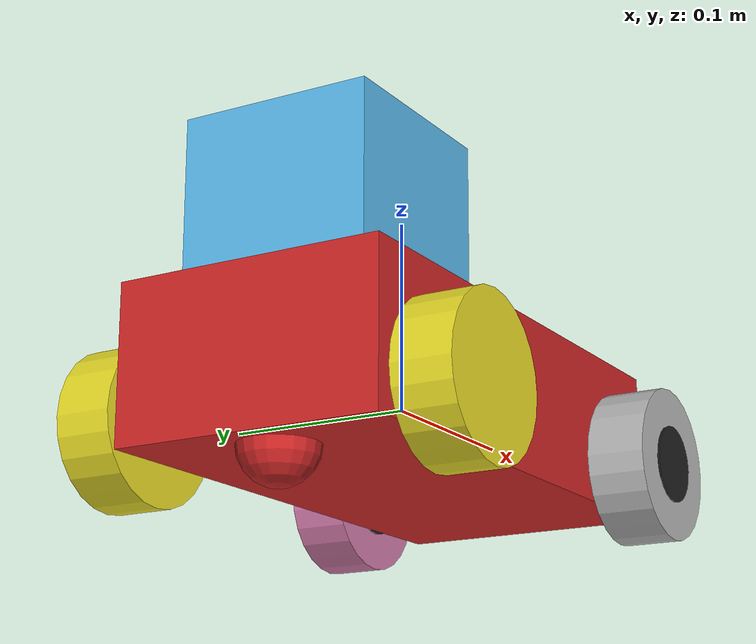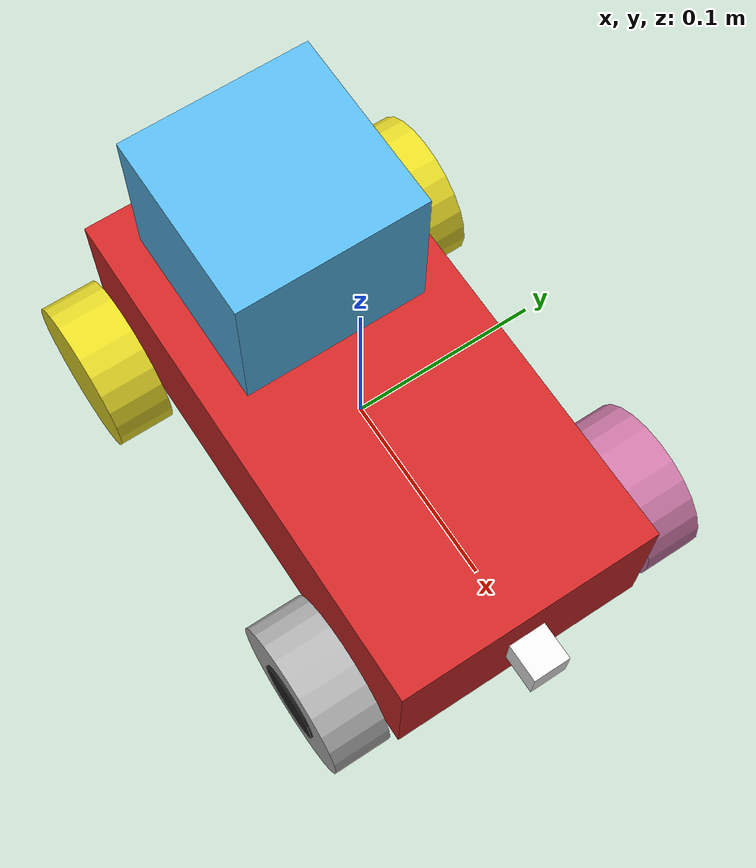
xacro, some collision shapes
<?xml version='1.0'?>

<robot name="my_robot" xmlns:xacro="http://www.ros.org/wiki/xacro">

  <xacro:include filename="$(find my_robot)/urdf/my_robot.gazebo" />

  <link name="robot_footprint"></link>

  <joint name="robot_footprint_joint" type="fixed">
    <origin xyz="0 0 0" rpy="0 0 0" />
    <parent link="robot_footprint"/>
    <child link="chassis" />
  </joint>

  <link name='chassis'>
    <pose>0 0 0 0 0 0</pose>

    <inertial>
      <mass value="15.0"/>
      <origin xyz="0 0 0" rpy=" 0 0 0"/>
      <inertia
          ixx="0.1" ixy="0" ixz="0"
          iyy="0.1" iyz="0"
          izz="0.1"
      />
    </inertial>

    <collision name='collision'>
      <origin xyz="0 0 0" rpy=" 0 0 0"/>
      <geometry>
        <box size=".28 .14 .08"/>
      </geometry>
    </collision>

    <visual name='chassis_visual'>
      <origin xyz="0 0 0" rpy=" 0 0 0"/>
      <geometry>
        <box size=".28 .14 .08"/>
      </geometry>
    </visual>

    <collision name='back_caster_collision'>
      <origin xyz="-0.11 0.0 -0.04" rpy=" 0 0 0"/>
      <geometry>
        <sphere radius="0.02"/>
      </geometry>
    </collision>

    <visual name='back_caster_visual'>
      <origin xyz="-0.11 0.0 -0.04" rpy=" 0 0 0"/>
      <geometry>
        <sphere radius="0.02"/>
      </geometry>
    </visual>

  </link>

  <!--Link (left_wheel)-->
  <link name='left_wheel'>
    <inertial>
      <mass value="5"/>
      <origin xyz="0 0 0" rpy="0 1.5707 1.5707" />
      <inertia
          ixx="0.1" ixy="0" ixz="0"
          iyy="0.1" iyz="0"
          izz="0.1"
      />
    </inertial>

    <collision name='left_wheel_collision'>
      <origin  xyz="0 0 0" rpy="0 1.5707 1.5707"/>
      <geometry>
        <cylinder length="0.03" radius="0.04"/>
      </geometry>
    </collision>

    <visual name='left_wheel_visual'>
      <origin xyz="0 0 0" rpy="0 1.5707 1.5707"/>
      <geometry>
        <cylinder length="0.03" radius="0.04"/>
      </geometry>
    </visual>

  </link>

  <!--Link (right_wheel)-->
  <link name='right_wheel'>
    <inertial>
      <mass value="5"/>
      <origin xyz="0 0 0" rpy="0 1.5707 1.5707" />
      <inertia
          ixx="0.1" ixy="0" ixz="0"
          iyy="0.1" iyz="0"
          izz="0.1"
      />
    </inertial>

    <collision name='right_wheel_collision'>
      <origin  xyz="0 0 0" rpy="0 1.5707 1.5707"/>
      <geometry>
        <cylinder length="0.03" radius="0.04"/>
      </geometry>
    </collision>

    <visual name='right_wheel_visual'>
      <origin xyz="0 0 0" rpy="0 1.5707 1.5707"/>
      <geometry>
        <cylinder length="0.03" radius="0.04"/>
      </geometry>
    </visual>

  </link>

  <!--Joint (left_wheel_hinge)-->
  <joint name="left_wheel_hinge" type="continuous">
    <origin xyz="-0.10 0.09 -0.02" rpy="0 0 0"/>
    <child link="left_wheel" />
    <parent link="chassis"/>
    <axis xyz="0 1 0" rpy="0 0 0" />
    <limit effort="10000" velocity="1000"/>
    <joint_properties damping="1.0" friction="1.0" />
  </joint>

  <!--Joint (right_wheel_hinge)-->
  <joint name="right_wheel_hinge" type="continuous">
    <origin xyz="-0.10 -0.09 -0.02" rpy="0 0 0"/>
    <child link="right_wheel" />
    <parent link="chassis"/>
    <axis xyz="0 1 0" rpy="0 0 0" />
    <limit effort="10000" velocity="1000"/>
    <joint_properties damping="1.0" friction="1.0" />
  </joint>

  <!--Link (left_steering_wheel_center)-->
  <link name='left_steering_wheel_center'>
    <inertial>
      <mass value="2"/>
      <origin xyz="0 0 0" rpy="0 1.5707 1.5707" />
      <inertia
          ixx="0.1" ixy="0" ixz="0"
          iyy="0.1" iyz="0"
          izz="0.1"
      />
    </inertial>

    <collision name='left_steering_wheel_center_collision'>
      <origin  xyz="0 0 0" rpy="0 1.5707 1.5707"/>
      <geometry>
        <cylinder length="0.032" radius="0.02"/>
      </geometry>
    </collision>

    <visual name='left_steering_wheel_center_visual'>
      <origin xyz="0 0 0" rpy="0 1.5707 1.5707"/>
      <geometry>
        <cylinder length="0.032" radius="0.02"/>
      </geometry>
    </visual>

  </link>

  <!--Link (right_steering_wheel_center)-->
  <link name='right_steering_wheel_center'>
    <inertial>
      <mass value="2"/>
      <origin xyz="0 0 0" rpy="0 1.5707 1.5707" />
      <inertia
          ixx="0.1" ixy="0" ixz="0"
          iyy="0.1" iyz="0"
          izz="0.1"
      />
    </inertial>

    <collision name='right_steering_wheel_center_collision'>
      <origin  xyz="0 0 0" rpy="0 1.5707 1.5707"/>
      <geometry>
        <cylinder length="0.032" radius="0.02"/>
      </geometry>
    </collision>

    <visual name='right_steering_wheel_center_visual'>
      <origin xyz="0 0 0" rpy="0 1.5707 1.5707"/>
      <geometry>
        <cylinder length="0.032" radius="0.02"/>
      </geometry>
    </visual>

  </link>

  <!--Joint (left_steering_wheel_hinge)-->
  <joint name="left_steering_wheel_center_hinge" type="revolute">
    <origin xyz="0.10 0.09 -0.02" rpy="0 0 0"/>
    <child link="left_steering_wheel_center" />
    <parent link="chassis"/>
    <axis xyz="0 0 1" rpy="0 0 0" />
    <limit effort="10000" velocity="1000" lower="-0.35" upper="0.35"/>
    <joint_properties damping="1.0" friction="1.0" />
  </joint>

  <!--Joint (right_steering_wheel_hinge)-->
  <joint name="right_steering_wheel_center_hinge" type="revolute">
    <origin xyz="0.10 -0.09 -0.02" rpy="0 0 0"/>
    <child link="right_steering_wheel_center"/>
    <parent link="chassis"/>
    <axis xyz="0 0 1" rpy="0 0 0" />
    <limit effort="10000" velocity="1000" lower="-0.35" upper="0.35"/>
    <joint_properties damping="1.0" friction="1.0" />
  </joint>

  <!--Link (left_steering_wheel)-->
  <link name='left_steering_wheel'>
    <inertial>
      <mass value="5"/>
      <origin xyz="0 0 0" rpy="0 1.5707 1.5707" />
      <inertia
          ixx="0.1" ixy="0" ixz="0"
          iyy="0.1" iyz="0"
          izz="0.1"
      />
    </inertial>

    <collision name='left_steering_wheel_collision'>
      <origin  xyz="0 0 0" rpy="0 1.5707 1.5707"/>
      <geometry>
        <cylinder length="0.03" radius="0.04"/>
      </geometry>
    </collision>

    <visual name='left_steering_wheel_visual'>
      <origin xyz="0 0 0" rpy="0 1.5707 1.5707"/>
      <geometry>
        <cylinder length="0.03" radius="0.04"/>
      </geometry>
    </visual>

  </link>

  <!--Link (right_steering_wheel)-->
  <link name='right_steering_wheel'>
    <inertial>
      <mass value="5"/>
      <origin xyz="0 0 0" rpy="0 1.5707 1.5707" />
      <inertia
          ixx="0.1" ixy="0" ixz="0"
          iyy="0.1" iyz="0"
          izz="0.1"
      />
    </inertial>

    <collision name='right_steering_wheel_collision'>
      <origin  xyz="0 0 0" rpy="0 1.5707 1.5707"/>
      <geometry>
        <cylinder length="0.03" radius="0.04"/>
      </geometry>
    </collision>

    <visual name='right_steering_wheel_visual'>
      <origin xyz="0 0 0" rpy="0 1.5707 1.5707"/>
      <geometry>
        <cylinder length="0.03" radius="0.04"/>
      </geometry>
    </visual>

  </link>

  <!--Joint (left_steering_wheel_hinge)-->
  <joint name="left_steering_wheel_hinge" type="continuous">
    <origin xyz="0.0 0.0 0.0" rpy="0 0 0"/>
    <child link="left_steering_wheel" />
    <parent link="left_steering_wheel_center"/>
    <axis xyz="0 1 0" rpy="0 0 0" />
    <limit effort="10000" velocity="1000"/>
    <joint_properties damping="1.0" friction="1.0" />
  </joint>

  <!--Joint (right_steering_wheel_hinge)-->
  <joint name="right_steering_wheel_hinge" type="continuous">
    <origin xyz="0.0 0.0 0.0" rpy="0 0 0"/>
    <child link="right_steering_wheel"/>
    <parent link="right_steering_wheel_center"/>
    <axis xyz="0 1 0" rpy="0 0 0" />
    <limit effort="10000" velocity="1000"/>
    <joint_properties damping="1.0" friction="1.0" />
  </joint>

  <!--Link (camera)-->
  <link name='camera'>
    <inertial>
      <origin xyz="0 0 0" rpy="0 0 0"/>
      <mass value="0.1"/>
      <box_inertia m="0.1" x="0.02" y="0.02" z="0.02"/>
      <inertia
          ixx="1e-6" ixy="0" ixz="0"
          iyy="1e-6" iyz="0"
          izz="1e-6"
      />
    </inertial>

    <visual name='camera_visual'>
      <origin xyz="0 0 0" rpy="0 0 0"/>
      <geometry>
        <box size=".02 .02 .02"/>
      </geometry>
    </visual>

    <collision name='camera_collision'>
      <origin xyz="0 0 0" rpy="0 0 0"/>
      <geometry>
        <box size=".02 .02 .02"/>
      </geometry>
    </collision>
  </link>

  <!--Joint (camera)-->
  <joint type="fixed" name="camera_joint">
    <origin xyz="0.15 0 0" rpy="0 0 0"/>
    <child link="camera"/>
    <parent link="chassis"/>
    <axis xyz="0 1 0"/>
  </joint>

  <!--Links (hokuyo)-->
  <link name='hokuyo'>
    <inertial>
      <origin xyz="0 0 0" rpy="0 0 0"/>
      <mass value="1e-5"/>
      <inertia
          ixx="1e-6" ixy="0" ixz="0"
          iyy="1e-6" iyz="0"
          izz="1e-6"
      />
    </inertial>

    <visual name='hokuyo_visual'>
      <origin xyz="0 0 0" rpy="0 0 0"/>
      <geometry>
        <mesh filename="package://my_robot/meshes/hokuyo.dae"/>
      </geometry>
    </visual>

    <collision name='hokuyo_collision'>
      <origin xyz="0 0 0" rpy="0 0 0"/>
      <geometry>
        <box size=".1 .1 .1"/>
      </geometry>
    </collision>
  </link>

  <!--Joint (hokuyo)-->
  <joint type="fixed" name="hokuyo_joint">
    <origin xyz="-0.07 0 0.075" rpy="0 0 0"/>
    <child link="hokuyo"/>
    <parent link="chassis"/>
    <axis xyz="0 1 0"/>
  </joint>

  <gazebo reference="left_steering_wheel_center">
    <material>Gazebo/Black</material>
  </gazebo>

  <gazebo reference="right_steering_wheel_center">
    <material>Gazebo/Black</material>
  </gazebo>

  <gazebo reference="left_wheel">
    <material>Gazebo/Yellow</material>
  </gazebo>

  <gazebo reference="right_wheel">
    <material>Gazebo/Yellow</material>
  </gazebo>

  <gazebo reference="camera">
    <material>Gazebo/White</material>
  </gazebo>

  <gazebo reference="chassis">
    <material>Gazebo/Red</material>
  </gazebo>

</robot>
